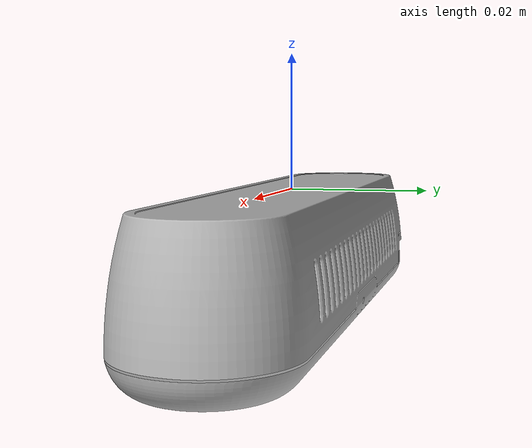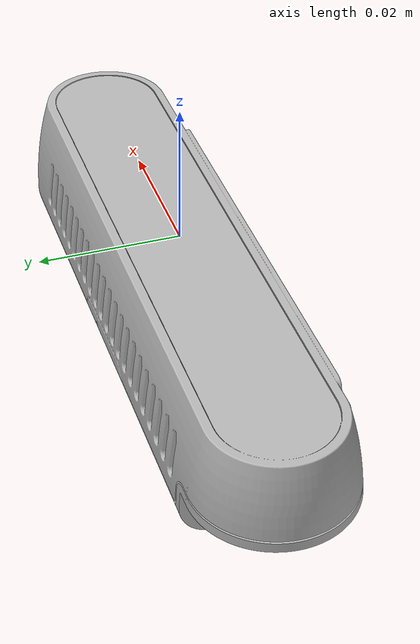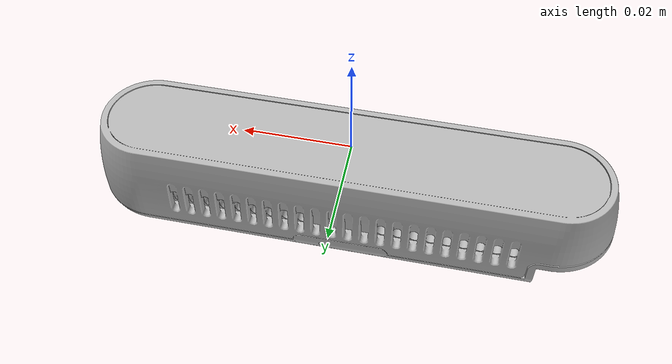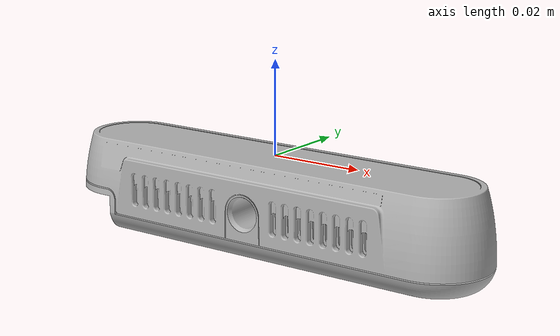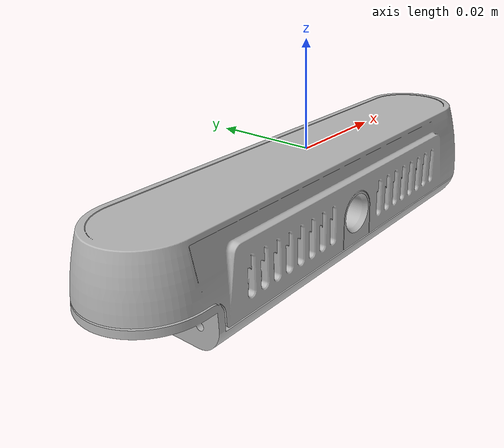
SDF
<?xml version="1.0"?>
<sdf version="1.6">
  <model name="realsense_camera_D415">
    <pose frame="">0 0 0 0 0 0</pose>
    <link name="link">
        <inertial>
        <mass>0.0615752</mass>
        <inertia>
          <ixx>9.108e-05</ixx>
          <ixy>0</ixy>
          <ixz>0</ixz>
          <iyy>2.51e-06</iyy>
          <iyz>0</iyz>
          <izz>8.931e-05</izz>
        </inertia>
        <pose frame=''>0 0 0 0 -0 0</pose>
      </inertial>
      <self_collide>0</self_collide>
      <enable_wind>0</enable_wind>
      <kinematic>0</kinematic>
      <gravity>0</gravity>
      <visual name="visual">
        <geometry>
          <mesh>
            <uri>model://realsense_camera_D415/meshes/intel_realsense_d415.stl</uri>
            <scale>0.001 0.001 0.001</scale>
          </mesh>
        </geometry>
      </visual>
      <collision name='collision'>
        <laser_retro>0</laser_retro>
        <max_contacts>10</max_contacts>
        <pose frame=''>0 0 0 0 -0 0</pose>
        <geometry>
          <box>
            <size>0.130 0.0078 0.0192</size>
          </box>
        </geometry>
        <surface>
          <friction>
            <ode>
              <mu>1</mu>
              <mu2>1</mu2>
              <fdir1>0 0 0</fdir1>
              <slip1>0</slip1>
              <slip2>0</slip2>
            </ode>
            <torsional>
              <coefficient>1</coefficient>
              <patch_radius>0</patch_radius>
              <surface_radius>0</surface_radius>
              <use_patch_radius>1</use_patch_radius>
              <ode>
                <slip>0</slip>
              </ode>
            </torsional>
          </friction>
          <bounce>
            <restitution_coefficient>0</restitution_coefficient>
            <threshold>1e+06</threshold>
          </bounce>
          <contact>
            <collide_without_contact>1</collide_without_contact>
            <collide_without_contact_bitmask>1</collide_without_contact_bitmask>
            <collide_bitmask>1</collide_bitmask>
            <ode>
              <soft_cfm>0</soft_cfm>
              <soft_erp>0.2</soft_erp>
              <kp>1e+13</kp>
              <kd>1</kd>
              <max_vel>0.01</max_vel>
              <min_depth>0</min_depth>
            </ode>
            <bullet>
              <split_impulse>1</split_impulse>
              <split_impulse_penetration_threshold>-0.01</split_impulse_penetration_threshold>
              <soft_cfm>0</soft_cfm>
              <soft_erp>0.2</soft_erp>
              <kp>1e+13</kp>
              <kd>1</kd>
            </bullet>
          </contact>
        </surface>
      </collision>
      <sensor name="color" type="camera">
        <pose frame="">0.035 0.0 0.0 0.0 -1.57 -1.57</pose>
        <camera name="__default__">
          <horizontal_fov>0.8726646259971648</horizontal_fov>
          <image>
            <width>320</width>
            <height>240</height>
            <format>RGB_INT8</format>
          </image>
          <clip>
            <near>0.1</near>
            <far>100</far>
          </clip>
          <noise>
            <type>gaussian</type>
            <mean>0.0</mean>
            <stddev>0.007</stddev>
          </noise>
        </camera>
        <always_on>1</always_on>
        <update_rate>30</update_rate>
        <visualize>1</visualize>
      </sensor>
      <sensor name="depth" type="depth">
        <pose frame="">0.035 0.0 0.0 0.0 -1.57 -1.57</pose>
        <camera name="__default__">
          <horizontal_fov>0.8726646259971648</horizontal_fov>
          <image>
            <width>320</width>
            <height>240</height>
          </image>
          <clip>
            <near>0.1</near>
            <far>100</far>
          </clip>
          <noise>
            <type>gaussian</type>
            <mean>0.0</mean>
            <stddev>0.007</stddev>
          </noise>
        </camera>
        <always_on>1</always_on>
        <update_rate>30</update_rate>
        <visualize>0</visualize>
        <plugin name='depth_camera_plugin' filename='libgazebo_yarp_depthCamera.so'>
          <yarpConfigurationFile>model://realsense_camera_D415/conf/gazebo_icub_realsense.ini</yarpConfigurationFile>
        </plugin>
      </sensor>
    </link>
  </model>
</sdf>
